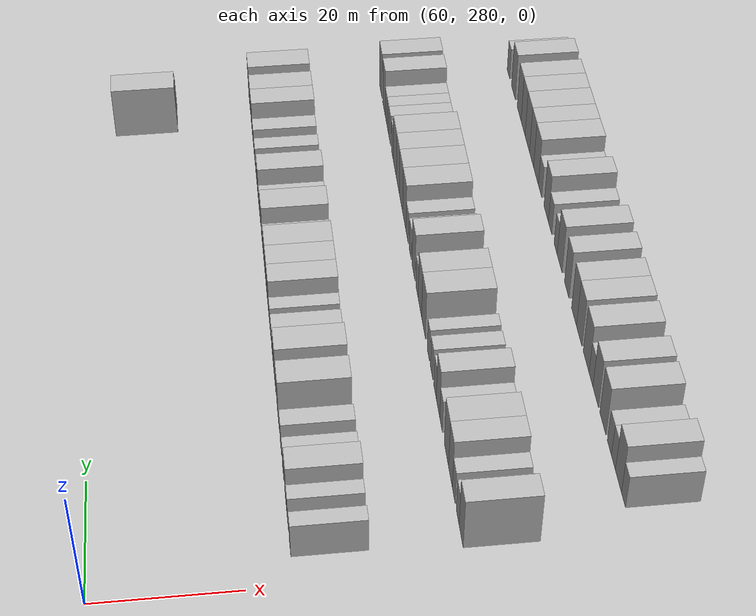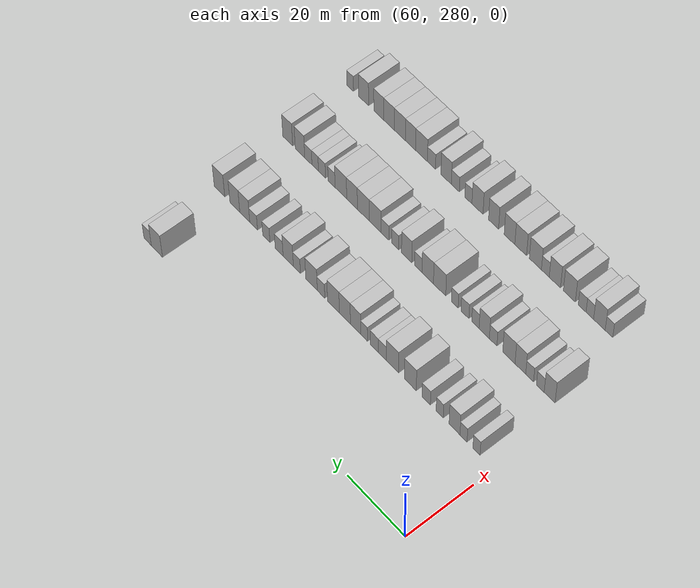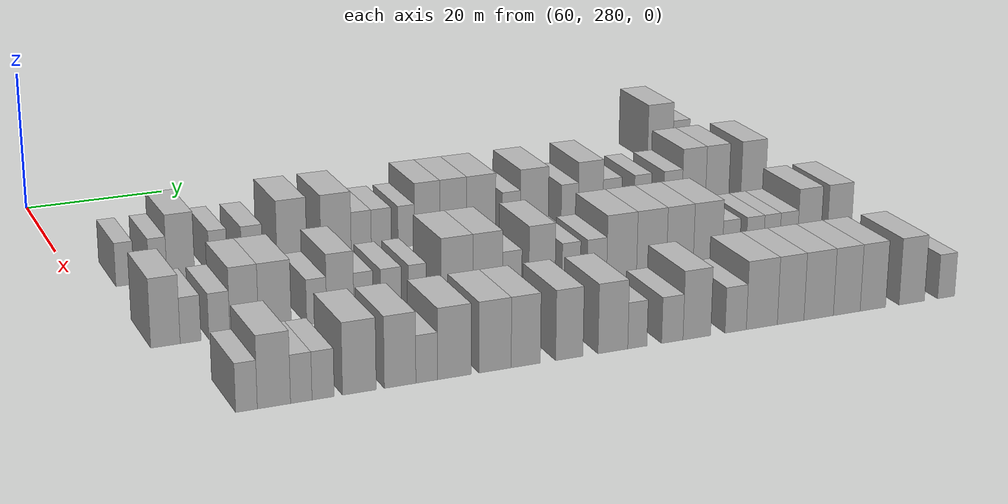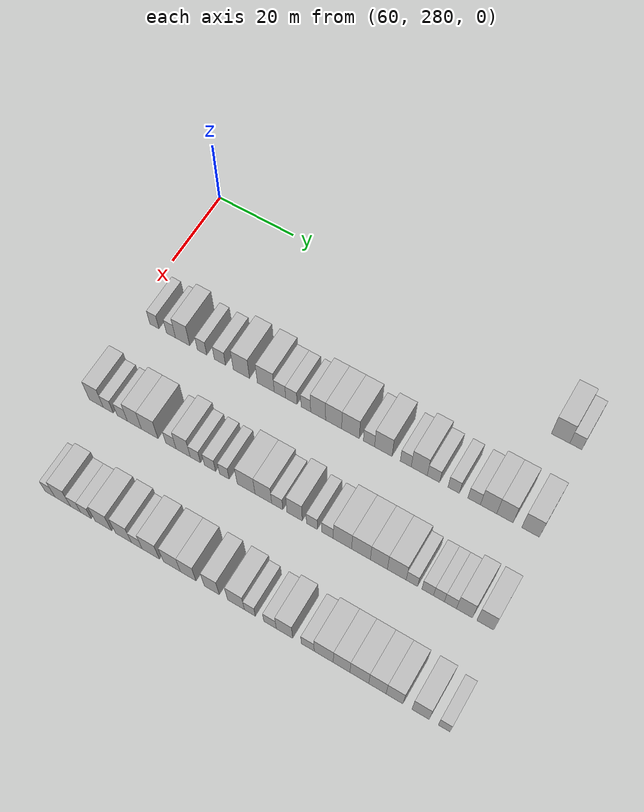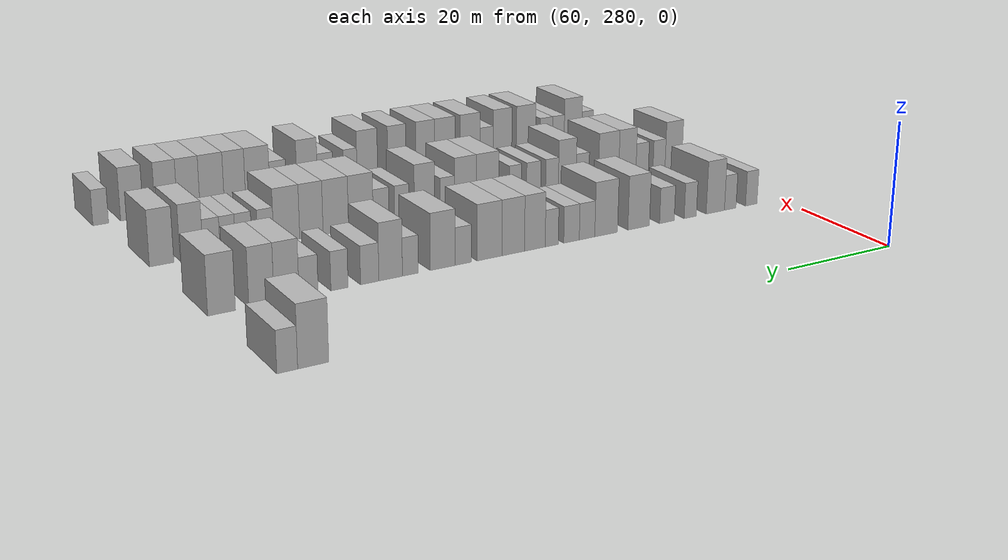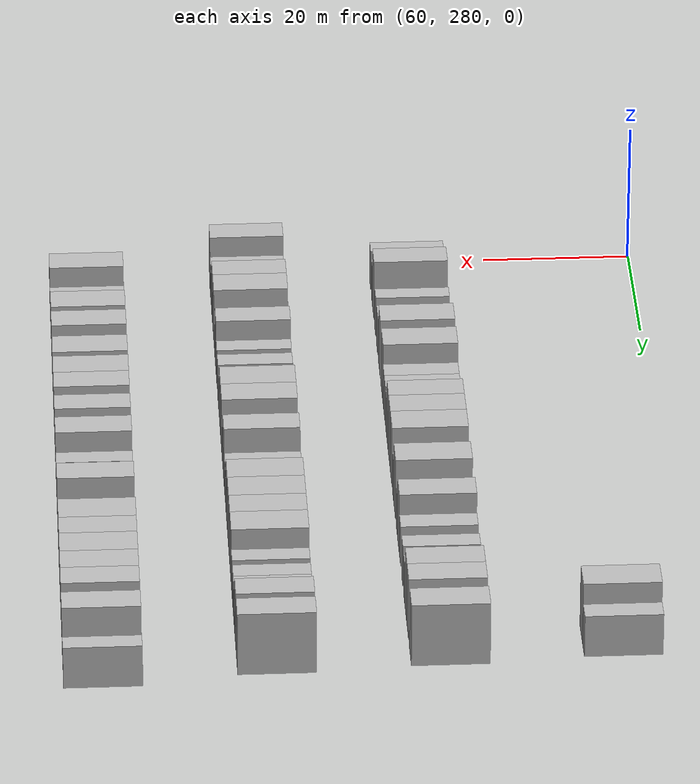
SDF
<sdf version="1.6">
 <world name="default">
  <model name="building_571">
   <static>1</static>
   <pose>69.0000 375.4257 0 0.000000 0.000000 0.000000</pose>
   <link name="link">
    <pose>0 0 4.50 0 0 0</pose>
    <collision name="collision"><geometry><box><size>10.0000 4.3633 9.0000</size></box></geometry></collision>
    <visual name="visual">
     <cast_shadows>0</cast_shadows>
     <geometry><box><size>10.0000 4.3633 9.0000</size></box></geometry>
     <material>
      <script>
       <uri>model://HANNAS_wall/materials/scripts</uri>
       <uri>model://HANNAS_wall/materials/textures</uri>
       <name>vrc/HANNAS_wall</name>
      </script>
     </material>
    </visual>
   </link>
  </model>
  <model name="building_572">
   <static>1</static>
   <pose>69.0000 379.0488 0 0.000000 0.000000 0.000000</pose>
   <link name="link">
    <pose>0 0 3.00 0 0 0</pose>
    <collision name="collision"><geometry><box><size>10.0000 2.8830 6.0000</size></box></geometry></collision>
    <visual name="visual">
     <cast_shadows>0</cast_shadows>
     <geometry><box><size>10.0000 2.8830 6.0000</size></box></geometry>
     <material>
      <script>
       <uri>model://HANNAS_wall/materials/scripts</uri>
       <uri>model://HANNAS_wall/materials/textures</uri>
       <name>vrc/HANNAS_wall</name>
      </script>
     </material>
    </visual>
   </link>
  </model>
  <model name="building_733">
   <static>1</static>
   <pose>91.0000 285.8639 0 0.000000 0.000000 0.000000</pose>
   <link name="link">
    <pose>0 0 3.00 0 0 0</pose>
    <collision name="collision"><geometry><box><size>10.0000 2.4365 6.0000</size></box></geometry></collision>
    <visual name="visual">
     <cast_shadows>0</cast_shadows>
     <geometry><box><size>10.0000 2.4365 6.0000</size></box></geometry>
     <material>
      <script>
       <uri>model://HANNAS_wall/materials/scripts</uri>
       <uri>model://HANNAS_wall/materials/textures</uri>
       <name>vrc/HANNAS_wall</name>
      </script>
     </material>
    </visual>
   </link>
  </model>
  <model name="building_734">
   <static>1</static>
   <pose>91.0000 290.2868 0 0.000000 0.000000 0.000000</pose>
   <link name="link">
    <pose>0 0 3.00 0 0 0</pose>
    <collision name="collision"><geometry><box><size>10.0000 2.4093 6.0000</size></box></geometry></collision>
    <visual name="visual">
     <cast_shadows>0</cast_shadows>
     <geometry><box><size>10.0000 2.4093 6.0000</size></box></geometry>
     <material>
      <script>
       <uri>model://HANNAS_wall/materials/scripts</uri>
       <uri>model://HANNAS_wall/materials/textures</uri>
       <name>vrc/HANNAS_wall</name>
      </script>
     </material>
    </visual>
   </link>
  </model>
  <model name="building_735">
   <static>1</static>
   <pose>91.0000 293.3769 0 0.000000 0.000000 0.000000</pose>
   <link name="link">
    <pose>0 0 4.50 0 0 0</pose>
    <collision name="collision"><geometry><box><size>10.0000 3.7709 9.0000</size></box></geometry></collision>
    <visual name="visual">
     <cast_shadows>0</cast_shadows>
     <geometry><box><size>10.0000 3.7709 9.0000</size></box></geometry>
     <material>
      <script>
       <uri>model://HANNAS_wall/materials/scripts</uri>
       <uri>model://HANNAS_wall/materials/textures</uri>
       <name>vrc/HANNAS_wall</name>
      </script>
     </material>
    </visual>
   </link>
  </model>
  <model name="building_736">
   <static>1</static>
   <pose>91.0000 298.4999 0 0.000000 0.000000 0.000000</pose>
   <link name="link">
    <pose>0 0 3.00 0 0 0</pose>
    <collision name="collision"><geometry><box><size>10.0000 2.4752 6.0000</size></box></geometry></collision>
    <visual name="visual">
     <cast_shadows>0</cast_shadows>
     <geometry><box><size>10.0000 2.4752 6.0000</size></box></geometry>
     <material>
      <script>
       <uri>model://HANNAS_wall/materials/scripts</uri>
       <uri>model://HANNAS_wall/materials/textures</uri>
       <name>vrc/HANNAS_wall</name>
      </script>
     </material>
    </visual>
   </link>
  </model>
  <model name="building_737">
   <static>1</static>
   <pose>91.0000 303.1941 0 0.000000 0.000000 0.000000</pose>
   <link name="link">
    <pose>0 0 3.00 0 0 0</pose>
    <collision name="collision"><geometry><box><size>10.0000 2.9131 6.0000</size></box></geometry></collision>
    <visual name="visual">
     <cast_shadows>0</cast_shadows>
     <geometry><box><size>10.0000 2.9131 6.0000</size></box></geometry>
     <material>
      <script>
       <uri>model://HANNAS_wall/materials/scripts</uri>
       <uri>model://HANNAS_wall/materials/textures</uri>
       <name>vrc/HANNAS_wall</name>
      </script>
     </material>
    </visual>
   </link>
  </model>
  <model name="building_738">
   <static>1</static>
   <pose>91.0000 308.7560 0 0.000000 0.000000 0.000000</pose>
   <link name="link">
    <pose>0 0 4.50 0 0 0</pose>
    <collision name="collision"><geometry><box><size>10.0000 4.2108 9.0000</size></box></geometry></collision>
    <visual name="visual">
     <cast_shadows>0</cast_shadows>
     <geometry><box><size>10.0000 4.2108 9.0000</size></box></geometry>
     <material>
      <script>
       <uri>model://HANNAS_wall/materials/scripts</uri>
       <uri>model://HANNAS_wall/materials/textures</uri>
       <name>vrc/HANNAS_wall</name>
      </script>
     </material>
    </visual>
   </link>
  </model>
  <model name="building_739">
   <static>1</static>
   <pose>91.0000 315.0283 0 0.000000 0.000000 0.000000</pose>
   <link name="link">
    <pose>0 0 4.50 0 0 0</pose>
    <collision name="collision"><geometry><box><size>10.0000 4.3337 9.0000</size></box></geometry></collision>
    <visual name="visual">
     <cast_shadows>0</cast_shadows>
     <geometry><box><size>10.0000 4.3337 9.0000</size></box></geometry>
     <material>
      <script>
       <uri>model://HANNAS_wall/materials/scripts</uri>
       <uri>model://HANNAS_wall/materials/textures</uri>
       <name>vrc/HANNAS_wall</name>
      </script>
     </material>
    </visual>
   </link>
  </model>
  <model name="building_740">
   <static>1</static>
   <pose>91.0000 318.6507 0 0.000000 0.000000 0.000000</pose>
   <link name="link">
    <pose>0 0 3.00 0 0 0</pose>
    <collision name="collision"><geometry><box><size>10.0000 2.9110 6.0000</size></box></geometry></collision>
    <visual name="visual">
     <cast_shadows>0</cast_shadows>
     <geometry><box><size>10.0000 2.9110 6.0000</size></box></geometry>
     <material>
      <script>
       <uri>model://HANNAS_wall/materials/scripts</uri>
       <uri>model://HANNAS_wall/materials/textures</uri>
       <name>vrc/HANNAS_wall</name>
      </script>
     </material>
    </visual>
   </link>
  </model>
  <model name="building_741">
   <static>1</static>
   <pose>91.0000 321.5542 0 0.000000 0.000000 0.000000</pose>
   <link name="link">
    <pose>0 0 3.00 0 0 0</pose>
    <collision name="collision"><geometry><box><size>10.0000 2.8960 6.0000</size></box></geometry></collision>
    <visual name="visual">
     <cast_shadows>0</cast_shadows>
     <geometry><box><size>10.0000 2.8960 6.0000</size></box></geometry>
     <material>
      <script>
       <uri>model://HANNAS_wall/materials/scripts</uri>
       <uri>model://HANNAS_wall/materials/textures</uri>
       <name>vrc/HANNAS_wall</name>
      </script>
     </material>
    </visual>
   </link>
  </model>
  <model name="building_742">
   <static>1</static>
   <pose>91.0000 325.2042 0 0.000000 0.000000 0.000000</pose>
   <link name="link">
    <pose>0 0 3.00 0 0 0</pose>
    <collision name="collision"><geometry><box><size>10.0000 2.4041 6.0000</size></box></geometry></collision>
    <visual name="visual">
     <cast_shadows>0</cast_shadows>
     <geometry><box><size>10.0000 2.4041 6.0000</size></box></geometry>
     <material>
      <script>
       <uri>model://HANNAS_wall/materials/scripts</uri>
       <uri>model://HANNAS_wall/materials/textures</uri>
       <name>vrc/HANNAS_wall</name>
      </script>
     </material>
    </visual>
   </link>
  </model>
  <model name="building_743">
   <static>1</static>
   <pose>91.0000 328.2833 0 0.000000 0.000000 0.000000</pose>
   <link name="link">
    <pose>0 0 4.50 0 0 0</pose>
    <collision name="collision"><geometry><box><size>10.0000 3.7541 9.0000</size></box></geometry></collision>
    <visual name="visual">
     <cast_shadows>0</cast_shadows>
     <geometry><box><size>10.0000 3.7541 9.0000</size></box></geometry>
     <material>
      <script>
       <uri>model://HANNAS_wall/materials/scripts</uri>
       <uri>model://HANNAS_wall/materials/textures</uri>
       <name>vrc/HANNAS_wall</name>
      </script>
     </material>
    </visual>
   </link>
  </model>
  <model name="building_744">
   <static>1</static>
   <pose>91.0000 332.1677 0 0.000000 0.000000 0.000000</pose>
   <link name="link">
    <pose>0 0 4.50 0 0 0</pose>
    <collision name="collision"><geometry><box><size>10.0000 4.0146 9.0000</size></box></geometry></collision>
    <visual name="visual">
     <cast_shadows>0</cast_shadows>
     <geometry><box><size>10.0000 4.0146 9.0000</size></box></geometry>
     <material>
      <script>
       <uri>model://HANNAS_wall/materials/scripts</uri>
       <uri>model://HANNAS_wall/materials/textures</uri>
       <name>vrc/HANNAS_wall</name>
      </script>
     </material>
    </visual>
   </link>
  </model>
  <model name="building_745">
   <static>1</static>
   <pose>91.0000 336.3568 0 0.000000 0.000000 0.000000</pose>
   <link name="link">
    <pose>0 0 4.50 0 0 0</pose>
    <collision name="collision"><geometry><box><size>10.0000 4.3636 9.0000</size></box></geometry></collision>
    <visual name="visual">
     <cast_shadows>0</cast_shadows>
     <geometry><box><size>10.0000 4.3636 9.0000</size></box></geometry>
     <material>
      <script>
       <uri>model://HANNAS_wall/materials/scripts</uri>
       <uri>model://HANNAS_wall/materials/textures</uri>
       <name>vrc/HANNAS_wall</name>
      </script>
     </material>
    </visual>
   </link>
  </model>
  <model name="building_746">
   <static>1</static>
   <pose>91.0000 340.9156 0 0.000000 0.000000 0.000000</pose>
   <link name="link">
    <pose>0 0 3.00 0 0 0</pose>
    <collision name="collision"><geometry><box><size>10.0000 2.7541 6.0000</size></box></geometry></collision>
    <visual name="visual">
     <cast_shadows>0</cast_shadows>
     <geometry><box><size>10.0000 2.7541 6.0000</size></box></geometry>
     <material>
      <script>
       <uri>model://HANNAS_wall/materials/scripts</uri>
       <uri>model://HANNAS_wall/materials/textures</uri>
       <name>vrc/HANNAS_wall</name>
      </script>
     </material>
    </visual>
   </link>
  </model>
  <model name="building_747">
   <static>1</static>
   <pose>91.0000 344.4344 0 0.000000 0.000000 0.000000</pose>
   <link name="link">
    <pose>0 0 4.50 0 0 0</pose>
    <collision name="collision"><geometry><box><size>10.0000 4.2835 9.0000</size></box></geometry></collision>
    <visual name="visual">
     <cast_shadows>0</cast_shadows>
     <geometry><box><size>10.0000 4.2835 9.0000</size></box></geometry>
     <material>
      <script>
       <uri>model://HANNAS_wall/materials/scripts</uri>
       <uri>model://HANNAS_wall/materials/textures</uri>
       <name>vrc/HANNAS_wall</name>
      </script>
     </material>
    </visual>
   </link>
  </model>
  <model name="building_748">
   <static>1</static>
   <pose>91.0000 349.8964 0 0.000000 0.000000 0.000000</pose>
   <link name="link">
    <pose>0 0 3.00 0 0 0</pose>
    <collision name="collision"><geometry><box><size>10.0000 2.6404 6.0000</size></box></geometry></collision>
    <visual name="visual">
     <cast_shadows>0</cast_shadows>
     <geometry><box><size>10.0000 2.6404 6.0000</size></box></geometry>
     <material>
      <script>
       <uri>model://HANNAS_wall/materials/scripts</uri>
       <uri>model://HANNAS_wall/materials/textures</uri>
       <name>vrc/HANNAS_wall</name>
      </script>
     </material>
    </visual>
   </link>
  </model>
  <model name="building_749">
   <static>1</static>
   <pose>91.0000 353.1496 0 0.000000 0.000000 0.000000</pose>
   <link name="link">
    <pose>0 0 4.50 0 0 0</pose>
    <collision name="collision"><geometry><box><size>10.0000 3.8658 9.0000</size></box></geometry></collision>
    <visual name="visual">
     <cast_shadows>0</cast_shadows>
     <geometry><box><size>10.0000 3.8658 9.0000</size></box></geometry>
     <material>
      <script>
       <uri>model://HANNAS_wall/materials/scripts</uri>
       <uri>model://HANNAS_wall/materials/textures</uri>
       <name>vrc/HANNAS_wall</name>
      </script>
     </material>
    </visual>
   </link>
  </model>
  <model name="building_750">
   <static>1</static>
   <pose>91.0000 356.5670 0 0.000000 0.000000 0.000000</pose>
   <link name="link">
    <pose>0 0 3.00 0 0 0</pose>
    <collision name="collision"><geometry><box><size>10.0000 2.9690 6.0000</size></box></geometry></collision>
    <visual name="visual">
     <cast_shadows>0</cast_shadows>
     <geometry><box><size>10.0000 2.9690 6.0000</size></box></geometry>
     <material>
      <script>
       <uri>model://HANNAS_wall/materials/scripts</uri>
       <uri>model://HANNAS_wall/materials/textures</uri>
       <name>vrc/HANNAS_wall</name>
      </script>
     </material>
    </visual>
   </link>
  </model>
  <model name="building_751">
   <static>1</static>
   <pose>91.0000 361.4147 0 0.000000 0.000000 0.000000</pose>
   <link name="link">
    <pose>0 0 3.00 0 0 0</pose>
    <collision name="collision"><geometry><box><size>10.0000 2.7264 6.0000</size></box></geometry></collision>
    <visual name="visual">
     <cast_shadows>0</cast_shadows>
     <geometry><box><size>10.0000 2.7264 6.0000</size></box></geometry>
     <material>
      <script>
       <uri>model://HANNAS_wall/materials/scripts</uri>
       <uri>model://HANNAS_wall/materials/textures</uri>
       <name>vrc/HANNAS_wall</name>
      </script>
     </material>
    </visual>
   </link>
  </model>
  <model name="building_752">
   <static>1</static>
   <pose>91.0000 366.2613 0 0.000000 0.000000 0.000000</pose>
   <link name="link">
    <pose>0 0 3.00 0 0 0</pose>
    <collision name="collision"><geometry><box><size>10.0000 2.9668 6.0000</size></box></geometry></collision>
    <visual name="visual">
     <cast_shadows>0</cast_shadows>
     <geometry><box><size>10.0000 2.9668 6.0000</size></box></geometry>
     <material>
      <script>
       <uri>model://HANNAS_wall/materials/scripts</uri>
       <uri>model://HANNAS_wall/materials/textures</uri>
       <name>vrc/HANNAS_wall</name>
      </script>
     </material>
    </visual>
   </link>
  </model>
  <model name="building_753">
   <static>1</static>
   <pose>91.0000 369.6602 0 0.000000 0.000000 0.000000</pose>
   <link name="link">
    <pose>0 0 4.50 0 0 0</pose>
    <collision name="collision"><geometry><box><size>10.0000 3.8311 9.0000</size></box></geometry></collision>
    <visual name="visual">
     <cast_shadows>0</cast_shadows>
     <geometry><box><size>10.0000 3.8311 9.0000</size></box></geometry>
     <material>
      <script>
       <uri>model://HANNAS_wall/materials/scripts</uri>
       <uri>model://HANNAS_wall/materials/textures</uri>
       <name>vrc/HANNAS_wall</name>
      </script>
     </material>
    </visual>
   </link>
  </model>
  <model name="building_754">
   <static>1</static>
   <pose>91.0000 373.4835 0 0.000000 0.000000 0.000000</pose>
   <link name="link">
    <pose>0 0 4.50 0 0 0</pose>
    <collision name="collision"><geometry><box><size>10.0000 3.8154 9.0000</size></box></geometry></collision>
    <visual name="visual">
     <cast_shadows>0</cast_shadows>
     <geometry><box><size>10.0000 3.8154 9.0000</size></box></geometry>
     <material>
      <script>
       <uri>model://HANNAS_wall/materials/scripts</uri>
       <uri>model://HANNAS_wall/materials/textures</uri>
       <name>vrc/HANNAS_wall</name>
      </script>
     </material>
    </visual>
   </link>
  </model>
  <model name="building_755">
   <static>1</static>
   <pose>91.0000 379.4404 0 0.000000 0.000000 0.000000</pose>
   <link name="link">
    <pose>0 0 4.50 0 0 0</pose>
    <collision name="collision"><geometry><box><size>10.0000 4.0983 9.0000</size></box></geometry></collision>
    <visual name="visual">
     <cast_shadows>0</cast_shadows>
     <geometry><box><size>10.0000 4.0983 9.0000</size></box></geometry>
     <material>
      <script>
       <uri>model://HANNAS_wall/materials/scripts</uri>
       <uri>model://HANNAS_wall/materials/textures</uri>
       <name>vrc/HANNAS_wall</name>
      </script>
     </material>
    </visual>
   </link>
  </model>
  <model name="building_907">
   <static>1</static>
   <pose>113.0000 285.5973 0 0.000000 0.000000 0.000000</pose>
   <link name="link">
    <pose>0 0 4.50 0 0 0</pose>
    <collision name="collision"><geometry><box><size>10.0000 3.6893 9.0000</size></box></geometry></collision>
    <visual name="visual">
     <cast_shadows>0</cast_shadows>
     <geometry><box><size>10.0000 3.6893 9.0000</size></box></geometry>
     <material>
      <script>
       <uri>model://HANNAS_wall/materials/scripts</uri>
       <uri>model://HANNAS_wall/materials/textures</uri>
       <name>vrc/HANNAS_wall</name>
      </script>
     </material>
    </visual>
   </link>
  </model>
  <model name="building_908">
   <static>1</static>
   <pose>113.0000 288.7519 0 0.000000 0.000000 0.000000</pose>
   <link name="link">
    <pose>0 0 3.00 0 0 0</pose>
    <collision name="collision"><geometry><box><size>10.0000 2.6200 6.0000</size></box></geometry></collision>
    <visual name="visual">
     <cast_shadows>0</cast_shadows>
     <geometry><box><size>10.0000 2.6200 6.0000</size></box></geometry>
     <material>
      <script>
       <uri>model://HANNAS_wall/materials/scripts</uri>
       <uri>model://HANNAS_wall/materials/textures</uri>
       <name>vrc/HANNAS_wall</name>
      </script>
     </material>
    </visual>
   </link>
  </model>
  <model name="building_909">
   <static>1</static>
   <pose>113.0000 292.4010 0 0.000000 0.000000 0.000000</pose>
   <link name="link">
    <pose>0 0 3.00 0 0 0</pose>
    <collision name="collision"><geometry><box><size>10.0000 2.6783 6.0000</size></box></geometry></collision>
    <visual name="visual">
     <cast_shadows>0</cast_shadows>
     <geometry><box><size>10.0000 2.6783 6.0000</size></box></geometry>
     <material>
      <script>
       <uri>model://HANNAS_wall/materials/scripts</uri>
       <uri>model://HANNAS_wall/materials/textures</uri>
       <name>vrc/HANNAS_wall</name>
      </script>
     </material>
    </visual>
   </link>
  </model>
  <model name="building_910">
   <static>1</static>
   <pose>113.0000 295.5786 0 0.000000 0.000000 0.000000</pose>
   <link name="link">
    <pose>0 0 4.50 0 0 0</pose>
    <collision name="collision"><geometry><box><size>10.0000 3.6768 9.0000</size></box></geometry></collision>
    <visual name="visual">
     <cast_shadows>0</cast_shadows>
     <geometry><box><size>10.0000 3.6768 9.0000</size></box></geometry>
     <material>
      <script>
       <uri>model://HANNAS_wall/materials/scripts</uri>
       <uri>model://HANNAS_wall/materials/textures</uri>
       <name>vrc/HANNAS_wall</name>
      </script>
     </material>
    </visual>
   </link>
  </model>
  <model name="building_911">
   <static>1</static>
   <pose>113.0000 299.5421 0 0.000000 0.000000 0.000000</pose>
   <link name="link">
    <pose>0 0 4.50 0 0 0</pose>
    <collision name="collision"><geometry><box><size>10.0000 4.2501 9.0000</size></box></geometry></collision>
    <visual name="visual">
     <cast_shadows>0</cast_shadows>
     <geometry><box><size>10.0000 4.2501 9.0000</size></box></geometry>
     <material>
      <script>
       <uri>model://HANNAS_wall/materials/scripts</uri>
       <uri>model://HANNAS_wall/materials/textures</uri>
       <name>vrc/HANNAS_wall</name>
      </script>
     </material>
    </visual>
   </link>
  </model>
  <model name="building_912">
   <static>1</static>
   <pose>113.0000 304.9868 0 0.000000 0.000000 0.000000</pose>
   <link name="link">
    <pose>0 0 3.00 0 0 0</pose>
    <collision name="collision"><geometry><box><size>10.0000 2.6393 6.0000</size></box></geometry></collision>
    <visual name="visual">
     <cast_shadows>0</cast_shadows>
     <geometry><box><size>10.0000 2.6393 6.0000</size></box></geometry>
     <material>
      <script>
       <uri>model://HANNAS_wall/materials/scripts</uri>
       <uri>model://HANNAS_wall/materials/textures</uri>
       <name>vrc/HANNAS_wall</name>
      </script>
     </material>
    </visual>
   </link>
  </model>
  <model name="building_913">
   <static>1</static>
   <pose>113.0000 308.1091 0 0.000000 0.000000 0.000000</pose>
   <link name="link">
    <pose>0 0 4.50 0 0 0</pose>
    <collision name="collision"><geometry><box><size>10.0000 3.6052 9.0000</size></box></geometry></collision>
    <visual name="visual">
     <cast_shadows>0</cast_shadows>
     <geometry><box><size>10.0000 3.6052 9.0000</size></box></geometry>
     <material>
      <script>
       <uri>model://HANNAS_wall/materials/scripts</uri>
       <uri>model://HANNAS_wall/materials/textures</uri>
       <name>vrc/HANNAS_wall</name>
      </script>
     </material>
    </visual>
   </link>
  </model>
  <model name="building_914">
   <static>1</static>
   <pose>113.0000 311.2004 0 0.000000 0.000000 0.000000</pose>
   <link name="link">
    <pose>0 0 3.00 0 0 0</pose>
    <collision name="collision"><geometry><box><size>10.0000 2.5774 6.0000</size></box></geometry></collision>
    <visual name="visual">
     <cast_shadows>0</cast_shadows>
     <geometry><box><size>10.0000 2.5774 6.0000</size></box></geometry>
     <material>
      <script>
       <uri>model://HANNAS_wall/materials/scripts</uri>
       <uri>model://HANNAS_wall/materials/textures</uri>
       <name>vrc/HANNAS_wall</name>
      </script>
     </material>
    </visual>
   </link>
  </model>
  <model name="building_915">
   <static>1</static>
   <pose>113.0000 314.8882 0 0.000000 0.000000 0.000000</pose>
   <link name="link">
    <pose>0 0 3.00 0 0 0</pose>
    <collision name="collision"><geometry><box><size>10.0000 2.7981 6.0000</size></box></geometry></collision>
    <visual name="visual">
     <cast_shadows>0</cast_shadows>
     <geometry><box><size>10.0000 2.7981 6.0000</size></box></geometry>
     <material>
      <script>
       <uri>model://HANNAS_wall/materials/scripts</uri>
       <uri>model://HANNAS_wall/materials/textures</uri>
       <name>vrc/HANNAS_wall</name>
      </script>
     </material>
    </visual>
   </link>
  </model>
  <model name="building_916">
   <static>1</static>
   <pose>113.0000 318.4943 0 0.000000 0.000000 0.000000</pose>
   <link name="link">
    <pose>0 0 3.00 0 0 0</pose>
    <collision name="collision"><geometry><box><size>10.0000 2.4142 6.0000</size></box></geometry></collision>
    <visual name="visual">
     <cast_shadows>0</cast_shadows>
     <geometry><box><size>10.0000 2.4142 6.0000</size></box></geometry>
     <material>
      <script>
       <uri>model://HANNAS_wall/materials/scripts</uri>
       <uri>model://HANNAS_wall/materials/textures</uri>
       <name>vrc/HANNAS_wall</name>
      </script>
     </material>
    </visual>
   </link>
  </model>
  <model name="building_917">
   <static>1</static>
   <pose>113.0000 323.9037 0 0.000000 0.000000 0.000000</pose>
   <link name="link">
    <pose>0 0 4.50 0 0 0</pose>
    <collision name="collision"><geometry><box><size>10.0000 4.4045 9.0000</size></box></geometry></collision>
    <visual name="visual">
     <cast_shadows>0</cast_shadows>
     <geometry><box><size>10.0000 4.4045 9.0000</size></box></geometry>
     <material>
      <script>
       <uri>model://HANNAS_wall/materials/scripts</uri>
       <uri>model://HANNAS_wall/materials/textures</uri>
       <name>vrc/HANNAS_wall</name>
      </script>
     </material>
    </visual>
   </link>
  </model>
  <model name="building_918">
   <static>1</static>
   <pose>113.0000 328.1606 0 0.000000 0.000000 0.000000</pose>
   <link name="link">
    <pose>0 0 4.50 0 0 0</pose>
    <collision name="collision"><geometry><box><size>10.0000 4.1094 9.0000</size></box></geometry></collision>
    <visual name="visual">
     <cast_shadows>0</cast_shadows>
     <geometry><box><size>10.0000 4.1094 9.0000</size></box></geometry>
     <material>
      <script>
       <uri>model://HANNAS_wall/materials/scripts</uri>
       <uri>model://HANNAS_wall/materials/textures</uri>
       <name>vrc/HANNAS_wall</name>
      </script>
     </material>
    </visual>
   </link>
  </model>
  <model name="building_919">
   <static>1</static>
   <pose>113.0000 331.5814 0 0.000000 0.000000 0.000000</pose>
   <link name="link">
    <pose>0 0 3.00 0 0 0</pose>
    <collision name="collision"><geometry><box><size>10.0000 2.7323 6.0000</size></box></geometry></collision>
    <visual name="visual">
     <cast_shadows>0</cast_shadows>
     <geometry><box><size>10.0000 2.7323 6.0000</size></box></geometry>
     <material>
      <script>
       <uri>model://HANNAS_wall/materials/scripts</uri>
       <uri>model://HANNAS_wall/materials/textures</uri>
       <name>vrc/HANNAS_wall</name>
      </script>
     </material>
    </visual>
   </link>
  </model>
  <model name="building_920">
   <static>1</static>
   <pose>113.0000 335.8117 0 0.000000 0.000000 0.000000</pose>
   <link name="link">
    <pose>0 0 4.50 0 0 0</pose>
    <collision name="collision"><geometry><box><size>10.0000 3.7282 9.0000</size></box></geometry></collision>
    <visual name="visual">
     <cast_shadows>0</cast_shadows>
     <geometry><box><size>10.0000 3.7282 9.0000</size></box></geometry>
     <material>
      <script>
       <uri>model://HANNAS_wall/materials/scripts</uri>
       <uri>model://HANNAS_wall/materials/textures</uri>
       <name>vrc/HANNAS_wall</name>
      </script>
     </material>
    </visual>
   </link>
  </model>
  <model name="building_921">
   <static>1</static>
   <pose>113.0000 339.9901 0 0.000000 0.000000 0.000000</pose>
   <link name="link">
    <pose>0 0 3.00 0 0 0</pose>
    <collision name="collision"><geometry><box><size>10.0000 2.6286 6.0000</size></box></geometry></collision>
    <visual name="visual">
     <cast_shadows>0</cast_shadows>
     <geometry><box><size>10.0000 2.6286 6.0000</size></box></geometry>
     <material>
      <script>
       <uri>model://HANNAS_wall/materials/scripts</uri>
       <uri>model://HANNAS_wall/materials/textures</uri>
       <name>vrc/HANNAS_wall</name>
      </script>
     </material>
    </visual>
   </link>
  </model>
  <model name="building_922">
   <static>1</static>
   <pose>113.0000 343.7219 0 0.000000 0.000000 0.000000</pose>
   <link name="link">
    <pose>0 0 3.00 0 0 0</pose>
    <collision name="collision"><geometry><box><size>10.0000 2.8350 6.0000</size></box></geometry></collision>
    <visual name="visual">
     <cast_shadows>0</cast_shadows>
     <geometry><box><size>10.0000 2.8350 6.0000</size></box></geometry>
     <material>
      <script>
       <uri>model://HANNAS_wall/materials/scripts</uri>
       <uri>model://HANNAS_wall/materials/textures</uri>
       <name>vrc/HANNAS_wall</name>
      </script>
     </material>
    </visual>
   </link>
  </model>
  <model name="building_923">
   <static>1</static>
   <pose>113.0000 347.3323 0 0.000000 0.000000 0.000000</pose>
   <link name="link">
    <pose>0 0 4.50 0 0 0</pose>
    <collision name="collision"><geometry><box><size>10.0000 4.3858 9.0000</size></box></geometry></collision>
    <visual name="visual">
     <cast_shadows>0</cast_shadows>
     <geometry><box><size>10.0000 4.3858 9.0000</size></box></geometry>
     <material>
      <script>
       <uri>model://HANNAS_wall/materials/scripts</uri>
       <uri>model://HANNAS_wall/materials/textures</uri>
       <name>vrc/HANNAS_wall</name>
      </script>
     </material>
    </visual>
   </link>
  </model>
  <model name="building_924">
   <static>1</static>
   <pose>113.0000 351.7414 0 0.000000 0.000000 0.000000</pose>
   <link name="link">
    <pose>0 0 4.50 0 0 0</pose>
    <collision name="collision"><geometry><box><size>10.0000 4.4324 9.0000</size></box></geometry></collision>
    <visual name="visual">
     <cast_shadows>0</cast_shadows>
     <geometry><box><size>10.0000 4.4324 9.0000</size></box></geometry>
     <material>
      <script>
       <uri>model://HANNAS_wall/materials/scripts</uri>
       <uri>model://HANNAS_wall/materials/textures</uri>
       <name>vrc/HANNAS_wall</name>
      </script>
     </material>
    </visual>
   </link>
  </model>
  <model name="building_925">
   <static>1</static>
   <pose>113.0000 355.9637 0 0.000000 0.000000 0.000000</pose>
   <link name="link">
    <pose>0 0 4.50 0 0 0</pose>
    <collision name="collision"><geometry><box><size>10.0000 4.0122 9.0000</size></box></geometry></collision>
    <visual name="visual">
     <cast_shadows>0</cast_shadows>
     <geometry><box><size>10.0000 4.0122 9.0000</size></box></geometry>
     <material>
      <script>
       <uri>model://HANNAS_wall/materials/scripts</uri>
       <uri>model://HANNAS_wall/materials/textures</uri>
       <name>vrc/HANNAS_wall</name>
      </script>
     </material>
    </visual>
   </link>
  </model>
  <model name="building_926">
   <static>1</static>
   <pose>113.0000 360.1641 0 0.000000 0.000000 0.000000</pose>
   <link name="link">
    <pose>0 0 4.50 0 0 0</pose>
    <collision name="collision"><geometry><box><size>10.0000 4.3887 9.0000</size></box></geometry></collision>
    <visual name="visual">
     <cast_shadows>0</cast_shadows>
     <geometry><box><size>10.0000 4.3887 9.0000</size></box></geometry>
     <material>
      <script>
       <uri>model://HANNAS_wall/materials/scripts</uri>
       <uri>model://HANNAS_wall/materials/textures</uri>
       <name>vrc/HANNAS_wall</name>
      </script>
     </material>
    </visual>
   </link>
  </model>
  <model name="building_927">
   <static>1</static>
   <pose>113.0000 363.6751 0 0.000000 0.000000 0.000000</pose>
   <link name="link">
    <pose>0 0 3.00 0 0 0</pose>
    <collision name="collision"><geometry><box><size>10.0000 2.6334 6.0000</size></box></geometry></collision>
    <visual name="visual">
     <cast_shadows>0</cast_shadows>
     <geometry><box><size>10.0000 2.6334 6.0000</size></box></geometry>
     <material>
      <script>
       <uri>model://HANNAS_wall/materials/scripts</uri>
       <uri>model://HANNAS_wall/materials/textures</uri>
       <name>vrc/HANNAS_wall</name>
      </script>
     </material>
    </visual>
   </link>
  </model>
  <model name="building_928">
   <static>1</static>
   <pose>113.0000 367.3336 0 0.000000 0.000000 0.000000</pose>
   <link name="link">
    <pose>0 0 3.00 0 0 0</pose>
    <collision name="collision"><geometry><box><size>10.0000 2.6835 6.0000</size></box></geometry></collision>
    <visual name="visual">
     <cast_shadows>0</cast_shadows>
     <geometry><box><size>10.0000 2.6835 6.0000</size></box></geometry>
     <material>
      <script>
       <uri>model://HANNAS_wall/materials/scripts</uri>
       <uri>model://HANNAS_wall/materials/textures</uri>
       <name>vrc/HANNAS_wall</name>
      </script>
     </material>
    </visual>
   </link>
  </model>
  <model name="building_929">
   <static>1</static>
   <pose>113.0000 369.9286 0 0.000000 0.000000 0.000000</pose>
   <link name="link">
    <pose>0 0 3.00 0 0 0</pose>
    <collision name="collision"><geometry><box><size>10.0000 2.5067 6.0000</size></box></geometry></collision>
    <visual name="visual">
     <cast_shadows>0</cast_shadows>
     <geometry><box><size>10.0000 2.5067 6.0000</size></box></geometry>
     <material>
      <script>
       <uri>model://HANNAS_wall/materials/scripts</uri>
       <uri>model://HANNAS_wall/materials/textures</uri>
       <name>vrc/HANNAS_wall</name>
      </script>
     </material>
    </visual>
   </link>
  </model>
  <model name="building_930">
   <static>1</static>
   <pose>113.0000 372.5620 0 0.000000 0.000000 0.000000</pose>
   <link name="link">
    <pose>0 0 3.00 0 0 0</pose>
    <collision name="collision"><geometry><box><size>10.0000 2.7602 6.0000</size></box></geometry></collision>
    <visual name="visual">
     <cast_shadows>0</cast_shadows>
     <geometry><box><size>10.0000 2.7602 6.0000</size></box></geometry>
     <material>
      <script>
       <uri>model://HANNAS_wall/materials/scripts</uri>
       <uri>model://HANNAS_wall/materials/textures</uri>
       <name>vrc/HANNAS_wall</name>
      </script>
     </material>
    </visual>
   </link>
  </model>
  <model name="building_931">
   <static>1</static>
   <pose>113.0000 375.7717 0 0.000000 0.000000 0.000000</pose>
   <link name="link">
    <pose>0 0 4.50 0 0 0</pose>
    <collision name="collision"><geometry><box><size>10.0000 3.6592 9.0000</size></box></geometry></collision>
    <visual name="visual">
     <cast_shadows>0</cast_shadows>
     <geometry><box><size>10.0000 3.6592 9.0000</size></box></geometry>
     <material>
      <script>
       <uri>model://HANNAS_wall/materials/scripts</uri>
       <uri>model://HANNAS_wall/materials/textures</uri>
       <name>vrc/HANNAS_wall</name>
      </script>
     </material>
    </visual>
   </link>
  </model>
  <model name="building_932">
   <static>1</static>
   <pose>113.0000 380.5078 0 0.000000 0.000000 0.000000</pose>
   <link name="link">
    <pose>0 0 4.50 0 0 0</pose>
    <collision name="collision"><geometry><box><size>10.0000 3.8129 9.0000</size></box></geometry></collision>
    <visual name="visual">
     <cast_shadows>0</cast_shadows>
     <geometry><box><size>10.0000 3.8129 9.0000</size></box></geometry>
     <material>
      <script>
       <uri>model://HANNAS_wall/materials/scripts</uri>
       <uri>model://HANNAS_wall/materials/textures</uri>
       <name>vrc/HANNAS_wall</name>
      </script>
     </material>
    </visual>
   </link>
  </model>
  <model name="building_1088">
   <static>1</static>
   <pose>135.0000 289.3301 0 0.000000 0.000000 0.000000</pose>
   <link name="link">
    <pose>0 0 3.00 0 0 0</pose>
    <collision name="collision"><geometry><box><size>10.0000 2.5571 6.0000</size></box></geometry></collision>
    <visual name="visual">
     <cast_shadows>0</cast_shadows>
     <geometry><box><size>10.0000 2.5571 6.0000</size></box></geometry>
     <material>
      <script>
       <uri>model://HANNAS_wall/materials/scripts</uri>
       <uri>model://HANNAS_wall/materials/textures</uri>
       <name>vrc/HANNAS_wall</name>
      </script>
     </material>
    </visual>
   </link>
  </model>
  <model name="building_1089">
   <static>1</static>
   <pose>135.0000 292.5844 0 0.000000 0.000000 0.000000</pose>
   <link name="link">
    <pose>0 0 4.50 0 0 0</pose>
    <collision name="collision"><geometry><box><size>10.0000 3.9513 9.0000</size></box></geometry></collision>
    <visual name="visual">
     <cast_shadows>0</cast_shadows>
     <geometry><box><size>10.0000 3.9513 9.0000</size></box></geometry>
     <material>
      <script>
       <uri>model://HANNAS_wall/materials/scripts</uri>
       <uri>model://HANNAS_wall/materials/textures</uri>
       <name>vrc/HANNAS_wall</name>
      </script>
     </material>
    </visual>
   </link>
  </model>
  <model name="building_1090">
   <static>1</static>
   <pose>135.0000 295.8503 0 0.000000 0.000000 0.000000</pose>
   <link name="link">
    <pose>0 0 3.00 0 0 0</pose>
    <collision name="collision"><geometry><box><size>10.0000 2.5805 6.0000</size></box></geometry></collision>
    <visual name="visual">
     <cast_shadows>0</cast_shadows>
     <geometry><box><size>10.0000 2.5805 6.0000</size></box></geometry>
     <material>
      <script>
       <uri>model://HANNAS_wall/materials/scripts</uri>
       <uri>model://HANNAS_wall/materials/textures</uri>
       <name>vrc/HANNAS_wall</name>
      </script>
     </material>
    </visual>
   </link>
  </model>
  <model name="building_1091">
   <static>1</static>
   <pose>135.0000 298.4846 0 0.000000 0.000000 0.000000</pose>
   <link name="link">
    <pose>0 0 3.00 0 0 0</pose>
    <collision name="collision"><geometry><box><size>10.0000 2.6881 6.0000</size></box></geometry></collision>
    <visual name="visual">
     <cast_shadows>0</cast_shadows>
     <geometry><box><size>10.0000 2.6881 6.0000</size></box></geometry>
     <material>
      <script>
       <uri>model://HANNAS_wall/materials/scripts</uri>
       <uri>model://HANNAS_wall/materials/textures</uri>
       <name>vrc/HANNAS_wall</name>
      </script>
     </material>
    </visual>
   </link>
  </model>
  <model name="building_1092">
   <static>1</static>
   <pose>135.0000 302.8987 0 0.000000 0.000000 0.000000</pose>
   <link name="link">
    <pose>0 0 4.50 0 0 0</pose>
    <collision name="collision"><geometry><box><size>10.0000 4.1402 9.0000</size></box></geometry></collision>
    <visual name="visual">
     <cast_shadows>0</cast_shadows>
     <geometry><box><size>10.0000 4.1402 9.0000</size></box></geometry>
     <material>
      <script>
       <uri>model://HANNAS_wall/materials/scripts</uri>
       <uri>model://HANNAS_wall/materials/textures</uri>
       <name>vrc/HANNAS_wall</name>
      </script>
     </material>
    </visual>
   </link>
  </model>
  <model name="building_1093">
   <static>1</static>
   <pose>135.0000 307.9288 0 0.000000 0.000000 0.000000</pose>
   <link name="link">
    <pose>0 0 4.50 0 0 0</pose>
    <collision name="collision"><geometry><box><size>10.0000 3.9200 9.0000</size></box></geometry></collision>
    <visual name="visual">
     <cast_shadows>0</cast_shadows>
     <geometry><box><size>10.0000 3.9200 9.0000</size></box></geometry>
     <material>
      <script>
       <uri>model://HANNAS_wall/materials/scripts</uri>
       <uri>model://HANNAS_wall/materials/textures</uri>
       <name>vrc/HANNAS_wall</name>
      </script>
     </material>
    </visual>
   </link>
  </model>
  <model name="building_1094">
   <static>1</static>
   <pose>135.0000 311.2537 0 0.000000 0.000000 0.000000</pose>
   <link name="link">
    <pose>0 0 3.00 0 0 0</pose>
    <collision name="collision"><geometry><box><size>10.0000 2.7298 6.0000</size></box></geometry></collision>
    <visual name="visual">
     <cast_shadows>0</cast_shadows>
     <geometry><box><size>10.0000 2.7298 6.0000</size></box></geometry>
     <material>
      <script>
       <uri>model://HANNAS_wall/materials/scripts</uri>
       <uri>model://HANNAS_wall/materials/textures</uri>
       <name>vrc/HANNAS_wall</name>
      </script>
     </material>
    </visual>
   </link>
  </model>
  <model name="building_1095">
   <static>1</static>
   <pose>135.0000 314.7427 0 0.000000 0.000000 0.000000</pose>
   <link name="link">
    <pose>0 0 4.50 0 0 0</pose>
    <collision name="collision"><geometry><box><size>10.0000 4.2483 9.0000</size></box></geometry></collision>
    <visual name="visual">
     <cast_shadows>0</cast_shadows>
     <geometry><box><size>10.0000 4.2483 9.0000</size></box></geometry>
     <material>
      <script>
       <uri>model://HANNAS_wall/materials/scripts</uri>
       <uri>model://HANNAS_wall/materials/textures</uri>
       <name>vrc/HANNAS_wall</name>
      </script>
     </material>
    </visual>
   </link>
  </model>
  <model name="building_1096">
   <static>1</static>
   <pose>135.0000 319.9377 0 0.000000 0.000000 0.000000</pose>
   <link name="link">
    <pose>0 0 4.50 0 0 0</pose>
    <collision name="collision"><geometry><box><size>10.0000 4.1417 9.0000</size></box></geometry></collision>
    <visual name="visual">
     <cast_shadows>0</cast_shadows>
     <geometry><box><size>10.0000 4.1417 9.0000</size></box></geometry>
     <material>
      <script>
       <uri>model://HANNAS_wall/materials/scripts</uri>
       <uri>model://HANNAS_wall/materials/textures</uri>
       <name>vrc/HANNAS_wall</name>
      </script>
     </material>
    </visual>
   </link>
  </model>
  <model name="building_1097">
   <static>1</static>
   <pose>135.0000 323.9091 0 0.000000 0.000000 0.000000</pose>
   <link name="link">
    <pose>0 0 4.50 0 0 0</pose>
    <collision name="collision"><geometry><box><size>10.0000 3.8012 9.0000</size></box></geometry></collision>
    <visual name="visual">
     <cast_shadows>0</cast_shadows>
     <geometry><box><size>10.0000 3.8012 9.0000</size></box></geometry>
     <material>
      <script>
       <uri>model://HANNAS_wall/materials/scripts</uri>
       <uri>model://HANNAS_wall/materials/textures</uri>
       <name>vrc/HANNAS_wall</name>
      </script>
     </material>
    </visual>
   </link>
  </model>
  <model name="building_1098">
   <static>1</static>
   <pose>135.0000 329.6163 0 0.000000 0.000000 0.000000</pose>
   <link name="link">
    <pose>0 0 4.50 0 0 0</pose>
    <collision name="collision"><geometry><box><size>10.0000 3.6131 9.0000</size></box></geometry></collision>
    <visual name="visual">
     <cast_shadows>0</cast_shadows>
     <geometry><box><size>10.0000 3.6131 9.0000</size></box></geometry>
     <material>
      <script>
       <uri>model://HANNAS_wall/materials/scripts</uri>
       <uri>model://HANNAS_wall/materials/textures</uri>
       <name>vrc/HANNAS_wall</name>
      </script>
     </material>
    </visual>
   </link>
  </model>
  <model name="building_1099">
   <static>1</static>
   <pose>135.0000 335.4219 0 0.000000 0.000000 0.000000</pose>
   <link name="link">
    <pose>0 0 4.50 0 0 0</pose>
    <collision name="collision"><geometry><box><size>10.0000 3.9982 9.0000</size></box></geometry></collision>
    <visual name="visual">
     <cast_shadows>0</cast_shadows>
     <geometry><box><size>10.0000 3.9982 9.0000</size></box></geometry>
     <material>
      <script>
       <uri>model://HANNAS_wall/materials/scripts</uri>
       <uri>model://HANNAS_wall/materials/textures</uri>
       <name>vrc/HANNAS_wall</name>
      </script>
     </material>
    </visual>
   </link>
  </model>
  <model name="building_1100">
   <static>1</static>
   <pose>135.0000 338.7217 0 0.000000 0.000000 0.000000</pose>
   <link name="link">
    <pose>0 0 3.00 0 0 0</pose>
    <collision name="collision"><geometry><box><size>10.0000 2.6014 6.0000</size></box></geometry></collision>
    <visual name="visual">
     <cast_shadows>0</cast_shadows>
     <geometry><box><size>10.0000 2.6014 6.0000</size></box></geometry>
     <material>
      <script>
       <uri>model://HANNAS_wall/materials/scripts</uri>
       <uri>model://HANNAS_wall/materials/textures</uri>
       <name>vrc/HANNAS_wall</name>
      </script>
     </material>
    </visual>
   </link>
  </model>
  <model name="building_1101">
   <static>1</static>
   <pose>135.0000 343.4900 0 0.000000 0.000000 0.000000</pose>
   <link name="link">
    <pose>0 0 3.00 0 0 0</pose>
    <collision name="collision"><geometry><box><size>10.0000 2.9352 6.0000</size></box></geometry></collision>
    <visual name="visual">
     <cast_shadows>0</cast_shadows>
     <geometry><box><size>10.0000 2.9352 6.0000</size></box></geometry>
     <material>
      <script>
       <uri>model://HANNAS_wall/materials/scripts</uri>
       <uri>model://HANNAS_wall/materials/textures</uri>
       <name>vrc/HANNAS_wall</name>
      </script>
     </material>
    </visual>
   </link>
  </model>
  <model name="building_1102">
   <static>1</static>
   <pose>135.0000 346.8761 0 0.000000 0.000000 0.000000</pose>
   <link name="link">
    <pose>0 0 4.50 0 0 0</pose>
    <collision name="collision"><geometry><box><size>10.0000 3.8370 9.0000</size></box></geometry></collision>
    <visual name="visual">
     <cast_shadows>0</cast_shadows>
     <geometry><box><size>10.0000 3.8370 9.0000</size></box></geometry>
     <material>
      <script>
       <uri>model://HANNAS_wall/materials/scripts</uri>
       <uri>model://HANNAS_wall/materials/textures</uri>
       <name>vrc/HANNAS_wall</name>
      </script>
     </material>
    </visual>
   </link>
  </model>
  <model name="building_1103">
   <static>1</static>
   <pose>135.0000 352.2939 0 0.000000 0.000000 0.000000</pose>
   <link name="link">
    <pose>0 0 3.00 0 0 0</pose>
    <collision name="collision"><geometry><box><size>10.0000 2.9985 6.0000</size></box></geometry></collision>
    <visual name="visual">
     <cast_shadows>0</cast_shadows>
     <geometry><box><size>10.0000 2.9985 6.0000</size></box></geometry>
     <material>
      <script>
       <uri>model://HANNAS_wall/materials/scripts</uri>
       <uri>model://HANNAS_wall/materials/textures</uri>
       <name>vrc/HANNAS_wall</name>
      </script>
     </material>
    </visual>
   </link>
  </model>
  <model name="building_1104">
   <static>1</static>
   <pose>135.0000 355.9958 0 0.000000 0.000000 0.000000</pose>
   <link name="link">
    <pose>0 0 4.50 0 0 0</pose>
    <collision name="collision"><geometry><box><size>10.0000 4.4054 9.0000</size></box></geometry></collision>
    <visual name="visual">
     <cast_shadows>0</cast_shadows>
     <geometry><box><size>10.0000 4.4054 9.0000</size></box></geometry>
     <material>
      <script>
       <uri>model://HANNAS_wall/materials/scripts</uri>
       <uri>model://HANNAS_wall/materials/textures</uri>
       <name>vrc/HANNAS_wall</name>
      </script>
     </material>
    </visual>
   </link>
  </model>
  <model name="building_1105">
   <static>1</static>
   <pose>135.0000 360.1072 0 0.000000 0.000000 0.000000</pose>
   <link name="link">
    <pose>0 0 4.50 0 0 0</pose>
    <collision name="collision"><geometry><box><size>10.0000 3.8175 9.0000</size></box></geometry></collision>
    <visual name="visual">
     <cast_shadows>0</cast_shadows>
     <geometry><box><size>10.0000 3.8175 9.0000</size></box></geometry>
     <material>
      <script>
       <uri>model://HANNAS_wall/materials/scripts</uri>
       <uri>model://HANNAS_wall/materials/textures</uri>
       <name>vrc/HANNAS_wall</name>
      </script>
     </material>
    </visual>
   </link>
  </model>
  <model name="building_1106">
   <static>1</static>
   <pose>135.0000 364.1506 0 0.000000 0.000000 0.000000</pose>
   <link name="link">
    <pose>0 0 4.50 0 0 0</pose>
    <collision name="collision"><geometry><box><size>10.0000 4.2693 9.0000</size></box></geometry></collision>
    <visual name="visual">
     <cast_shadows>0</cast_shadows>
     <geometry><box><size>10.0000 4.2693 9.0000</size></box></geometry>
     <material>
      <script>
       <uri>model://HANNAS_wall/materials/scripts</uri>
       <uri>model://HANNAS_wall/materials/textures</uri>
       <name>vrc/HANNAS_wall</name>
      </script>
     </material>
    </visual>
   </link>
  </model>
  <model name="building_1107">
   <static>1</static>
   <pose>135.0000 368.2465 0 0.000000 0.000000 0.000000</pose>
   <link name="link">
    <pose>0 0 4.50 0 0 0</pose>
    <collision name="collision"><geometry><box><size>10.0000 3.9225 9.0000</size></box></geometry></collision>
    <visual name="visual">
     <cast_shadows>0</cast_shadows>
     <geometry><box><size>10.0000 3.9225 9.0000</size></box></geometry>
     <material>
      <script>
       <uri>model://HANNAS_wall/materials/scripts</uri>
       <uri>model://HANNAS_wall/materials/textures</uri>
       <name>vrc/HANNAS_wall</name>
      </script>
     </material>
    </visual>
   </link>
  </model>
  <model name="building_1108">
   <static>1</static>
   <pose>135.0000 372.0956 0 0.000000 0.000000 0.000000</pose>
   <link name="link">
    <pose>0 0 4.50 0 0 0</pose>
    <collision name="collision"><geometry><box><size>10.0000 3.7759 9.0000</size></box></geometry></collision>
    <visual name="visual">
     <cast_shadows>0</cast_shadows>
     <geometry><box><size>10.0000 3.7759 9.0000</size></box></geometry>
     <material>
      <script>
       <uri>model://HANNAS_wall/materials/scripts</uri>
       <uri>model://HANNAS_wall/materials/textures</uri>
       <name>vrc/HANNAS_wall</name>
      </script>
     </material>
    </visual>
   </link>
  </model>
  <model name="building_1109">
   <static>1</static>
   <pose>135.0000 377.8973 0 0.000000 0.000000 0.000000</pose>
   <link name="link">
    <pose>0 0 4.50 0 0 0</pose>
    <collision name="collision"><geometry><box><size>10.0000 3.8275 9.0000</size></box></geometry></collision>
    <visual name="visual">
     <cast_shadows>0</cast_shadows>
     <geometry><box><size>10.0000 3.8275 9.0000</size></box></geometry>
     <material>
      <script>
       <uri>model://HANNAS_wall/materials/scripts</uri>
       <uri>model://HANNAS_wall/materials/textures</uri>
       <name>vrc/HANNAS_wall</name>
      </script>
     </material>
    </visual>
   </link>
  </model>
  <model name="building_1110">
   <static>1</static>
   <pose>135.0000 383.0973 0 0.000000 0.000000 0.000000</pose>
   <link name="link">
    <pose>0 0 3.00 0 0 0</pose>
    <collision name="collision"><geometry><box><size>10.0000 2.5726 6.0000</size></box></geometry></collision>
    <visual name="visual">
     <cast_shadows>0</cast_shadows>
     <geometry><box><size>10.0000 2.5726 6.0000</size></box></geometry>
     <material>
      <script>
       <uri>model://HANNAS_wall/materials/scripts</uri>
       <uri>model://HANNAS_wall/materials/textures</uri>
       <name>vrc/HANNAS_wall</name>
      </script>
     </material>
    </visual>
   </link>
  </model>
 </world>
</sdf>
